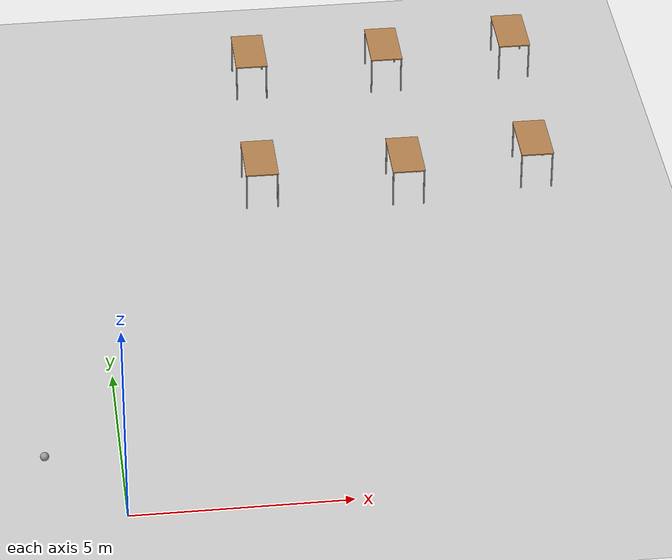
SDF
<sdf version="1.6">
 <world name="default">
  <model name="ground_plane">
   <static>1</static>
   <link name="link">
    <collision name="collision">
     <geometry><plane><normal>0 0 1</normal><size>100 100</size></plane></geometry>
     <surface>
      <contact><collide_bitmask>65535</collide_bitmask></contact>
      <friction><ode><mu>100</mu><mu2>50</mu2></ode></friction>
     </surface>
    </collision>
    <visual name="visual">
     <cast_shadows>0</cast_shadows>
     <geometry><plane><normal>0 0 1</normal><size>100 100</size></plane></geometry>
     <material>
      <script><uri>file://media/materials/scripts/gazebo.material</uri><name>Gazebo/Grey</name></script>
     </material>
    </visual>
   </link>
  </model>
  <model name="table_clone_8">
   <static>1</static>
   <link name="link">
    <collision name="surface">
     <pose>0 0 1 0 -0 0</pose>
     <geometry><box><size>1.5 0.8 0.03</size></box></geometry>
     <surface><friction><ode><mu>0.6</mu><mu2>0.6</mu2></ode></friction></surface>
    </collision>
    <visual name="visual1">
     <pose>0 0 1 0 -0 0</pose>
     <geometry><box><size>1.5 0.8 0.03</size></box></geometry>
     <material>
      <script><uri>file://media/materials/scripts/gazebo.material</uri><name>Gazebo/Wood</name></script>
     </material>
    </visual>
    <collision name="front_left_leg">
     <pose>0.68 0.38 0.5 0 -0 0</pose>
     <geometry><cylinder><radius>0.02</radius><length>1</length></cylinder></geometry>
    </collision>
    <visual name="front_left_leg">
     <pose>0.68 0.38 0.5 0 -0 0</pose>
     <geometry><cylinder><radius>0.02</radius><length>1</length></cylinder></geometry>
     <material>
      <script><uri>file://media/materials/scripts/gazebo.material</uri><name>Gazebo/Grey</name></script>
     </material>
    </visual>
    <collision name="front_right_leg">
     <pose>0.68 -0.38 0.5 0 -0 0</pose>
     <geometry><cylinder><radius>0.02</radius><length>1</length></cylinder></geometry>
    </collision>
    <visual name="front_right_leg">
     <pose>0.68 -0.38 0.5 0 -0 0</pose>
     <geometry><cylinder><radius>0.02</radius><length>1</length></cylinder></geometry>
     <material>
      <script><uri>file://media/materials/scripts/gazebo.material</uri><name>Gazebo/Grey</name></script>
     </material>
    </visual>
    <collision name="back_right_leg">
     <pose>-0.68 -0.38 0.5 0 -0 0</pose>
     <geometry><cylinder><radius>0.02</radius><length>1</length></cylinder></geometry>
    </collision>
    <visual name="back_right_leg">
     <pose>-0.68 -0.38 0.5 0 -0 0</pose>
     <geometry><cylinder><radius>0.02</radius><length>1</length></cylinder></geometry>
     <material>
      <script><uri>file://media/materials/scripts/gazebo.material</uri><name>Gazebo/Grey</name></script>
     </material>
    </visual>
    <collision name="back_left_leg">
     <pose>-0.68 0.38 0.5 0 -0 0</pose>
     <geometry><cylinder><radius>0.02</radius><length>1</length></cylinder></geometry>
    </collision>
    <visual name="back_left_leg">
     <pose>-0.68 0.38 0.5 0 -0 0</pose>
     <geometry><cylinder><radius>0.02</radius><length>1</length></cylinder></geometry>
     <material>
      <script><uri>file://media/materials/scripts/gazebo.material</uri><name>Gazebo/Grey</name></script>
     </material>
    </visual>
   </link>
   <pose>4.36338 16.9185 0 0 0 -1.57678</pose>
  </model>
  <model name="table_clone_9">
   <static>1</static>
   <link name="link">
    <collision name="surface">
     <pose>0 0 1 0 -0 0</pose>
     <geometry><box><size>1.5 0.8 0.03</size></box></geometry>
     <surface><friction><ode><mu>0.6</mu><mu2>0.6</mu2></ode></friction></surface>
    </collision>
    <visual name="visual1">
     <pose>0 0 1 0 -0 0</pose>
     <geometry><box><size>1.5 0.8 0.03</size></box></geometry>
     <material>
      <script><uri>file://media/materials/scripts/gazebo.material</uri><name>Gazebo/Wood</name></script>
     </material>
    </visual>
    <collision name="front_left_leg">
     <pose>0.68 0.38 0.5 0 -0 0</pose>
     <geometry><cylinder><radius>0.02</radius><length>1</length></cylinder></geometry>
    </collision>
    <visual name="front_left_leg">
     <pose>0.68 0.38 0.5 0 -0 0</pose>
     <geometry><cylinder><radius>0.02</radius><length>1</length></cylinder></geometry>
     <material>
      <script><uri>file://media/materials/scripts/gazebo.material</uri><name>Gazebo/Grey</name></script>
     </material>
    </visual>
    <collision name="front_right_leg">
     <pose>0.68 -0.38 0.5 0 -0 0</pose>
     <geometry><cylinder><radius>0.02</radius><length>1</length></cylinder></geometry>
    </collision>
    <visual name="front_right_leg">
     <pose>0.68 -0.38 0.5 0 -0 0</pose>
     <geometry><cylinder><radius>0.02</radius><length>1</length></cylinder></geometry>
     <material>
      <script><uri>file://media/materials/scripts/gazebo.material</uri><name>Gazebo/Grey</name></script>
     </material>
    </visual>
    <collision name="back_right_leg">
     <pose>-0.68 -0.38 0.5 0 -0 0</pose>
     <geometry><cylinder><radius>0.02</radius><length>1</length></cylinder></geometry>
    </collision>
    <visual name="back_right_leg">
     <pose>-0.68 -0.38 0.5 0 -0 0</pose>
     <geometry><cylinder><radius>0.02</radius><length>1</length></cylinder></geometry>
     <material>
      <script><uri>file://media/materials/scripts/gazebo.material</uri><name>Gazebo/Grey</name></script>
     </material>
    </visual>
    <collision name="back_left_leg">
     <pose>-0.68 0.38 0.5 0 -0 0</pose>
     <geometry><cylinder><radius>0.02</radius><length>1</length></cylinder></geometry>
    </collision>
    <visual name="back_left_leg">
     <pose>-0.68 0.38 0.5 0 -0 0</pose>
     <geometry><cylinder><radius>0.02</radius><length>1</length></cylinder></geometry>
     <material>
      <script><uri>file://media/materials/scripts/gazebo.material</uri><name>Gazebo/Grey</name></script>
     </material>
    </visual>
   </link>
   <pose>4.13155 12.0466 0 0 0 -1.57678</pose>
  </model>
  <model name="table_clone_10">
   <static>1</static>
   <link name="link">
    <collision name="surface">
     <pose>0 0 1 0 -0 0</pose>
     <geometry><box><size>1.5 0.8 0.03</size></box></geometry>
     <surface><friction><ode><mu>0.6</mu><mu2>0.6</mu2></ode></friction></surface>
    </collision>
    <visual name="visual1">
     <pose>0 0 1 0 -0 0</pose>
     <geometry><box><size>1.5 0.8 0.03</size></box></geometry>
     <material>
      <script><uri>file://media/materials/scripts/gazebo.material</uri><name>Gazebo/Wood</name></script>
     </material>
    </visual>
    <collision name="front_left_leg">
     <pose>0.68 0.38 0.5 0 -0 0</pose>
     <geometry><cylinder><radius>0.02</radius><length>1</length></cylinder></geometry>
    </collision>
    <visual name="front_left_leg">
     <pose>0.68 0.38 0.5 0 -0 0</pose>
     <geometry><cylinder><radius>0.02</radius><length>1</length></cylinder></geometry>
     <material>
      <script><uri>file://media/materials/scripts/gazebo.material</uri><name>Gazebo/Grey</name></script>
     </material>
    </visual>
    <collision name="front_right_leg">
     <pose>0.68 -0.38 0.5 0 -0 0</pose>
     <geometry><cylinder><radius>0.02</radius><length>1</length></cylinder></geometry>
    </collision>
    <visual name="front_right_leg">
     <pose>0.68 -0.38 0.5 0 -0 0</pose>
     <geometry><cylinder><radius>0.02</radius><length>1</length></cylinder></geometry>
     <material>
      <script><uri>file://media/materials/scripts/gazebo.material</uri><name>Gazebo/Grey</name></script>
     </material>
    </visual>
    <collision name="back_right_leg">
     <pose>-0.68 -0.38 0.5 0 -0 0</pose>
     <geometry><cylinder><radius>0.02</radius><length>1</length></cylinder></geometry>
    </collision>
    <visual name="back_right_leg">
     <pose>-0.68 -0.38 0.5 0 -0 0</pose>
     <geometry><cylinder><radius>0.02</radius><length>1</length></cylinder></geometry>
     <material>
      <script><uri>file://media/materials/scripts/gazebo.material</uri><name>Gazebo/Grey</name></script>
     </material>
    </visual>
    <collision name="back_left_leg">
     <pose>-0.68 0.38 0.5 0 -0 0</pose>
     <geometry><cylinder><radius>0.02</radius><length>1</length></cylinder></geometry>
    </collision>
    <visual name="back_left_leg">
     <pose>-0.68 0.38 0.5 0 -0 0</pose>
     <geometry><cylinder><radius>0.02</radius><length>1</length></cylinder></geometry>
     <material>
      <script><uri>file://media/materials/scripts/gazebo.material</uri><name>Gazebo/Grey</name></script>
     </material>
    </visual>
   </link>
   <pose>7.70477 11.789 0 0 0 -1.57678</pose>
  </model>
  <model name="table_clone_11">
   <static>1</static>
   <link name="link">
    <collision name="surface">
     <pose>0 0 1 0 -0 0</pose>
     <geometry><box><size>1.5 0.8 0.03</size></box></geometry>
     <surface><friction><ode><mu>0.6</mu><mu2>0.6</mu2></ode></friction></surface>
    </collision>
    <visual name="visual1">
     <pose>0 0 1 0 -0 0</pose>
     <geometry><box><size>1.5 0.8 0.03</size></box></geometry>
     <material>
      <script><uri>file://media/materials/scripts/gazebo.material</uri><name>Gazebo/Wood</name></script>
     </material>
    </visual>
    <collision name="front_left_leg">
     <pose>0.68 0.38 0.5 0 -0 0</pose>
     <geometry><cylinder><radius>0.02</radius><length>1</length></cylinder></geometry>
    </collision>
    <visual name="front_left_leg">
     <pose>0.68 0.38 0.5 0 -0 0</pose>
     <geometry><cylinder><radius>0.02</radius><length>1</length></cylinder></geometry>
     <material>
      <script><uri>file://media/materials/scripts/gazebo.material</uri><name>Gazebo/Grey</name></script>
     </material>
    </visual>
    <collision name="front_right_leg">
     <pose>0.68 -0.38 0.5 0 -0 0</pose>
     <geometry><cylinder><radius>0.02</radius><length>1</length></cylinder></geometry>
    </collision>
    <visual name="front_right_leg">
     <pose>0.68 -0.38 0.5 0 -0 0</pose>
     <geometry><cylinder><radius>0.02</radius><length>1</length></cylinder></geometry>
     <material>
      <script><uri>file://media/materials/scripts/gazebo.material</uri><name>Gazebo/Grey</name></script>
     </material>
    </visual>
    <collision name="back_right_leg">
     <pose>-0.68 -0.38 0.5 0 -0 0</pose>
     <geometry><cylinder><radius>0.02</radius><length>1</length></cylinder></geometry>
    </collision>
    <visual name="back_right_leg">
     <pose>-0.68 -0.38 0.5 0 -0 0</pose>
     <geometry><cylinder><radius>0.02</radius><length>1</length></cylinder></geometry>
     <material>
      <script><uri>file://media/materials/scripts/gazebo.material</uri><name>Gazebo/Grey</name></script>
     </material>
    </visual>
    <collision name="back_left_leg">
     <pose>-0.68 0.38 0.5 0 -0 0</pose>
     <geometry><cylinder><radius>0.02</radius><length>1</length></cylinder></geometry>
    </collision>
    <visual name="back_left_leg">
     <pose>-0.68 0.38 0.5 0 -0 0</pose>
     <geometry><cylinder><radius>0.02</radius><length>1</length></cylinder></geometry>
     <material>
      <script><uri>file://media/materials/scripts/gazebo.material</uri><name>Gazebo/Grey</name></script>
     </material>
    </visual>
   </link>
   <pose>7.82498 16.8752 0 0 0 -1.57678</pose>
  </model>
  <model name="table_clone_12">
   <static>1</static>
   <link name="link">
    <collision name="surface">
     <pose>0 0 1 0 -0 0</pose>
     <geometry><box><size>1.5 0.8 0.03</size></box></geometry>
     <surface><friction><ode><mu>0.6</mu><mu2>0.6</mu2></ode></friction></surface>
    </collision>
    <visual name="visual1">
     <pose>0 0 1 0 -0 0</pose>
     <geometry><box><size>1.5 0.8 0.03</size></box></geometry>
     <material>
      <script><uri>file://media/materials/scripts/gazebo.material</uri><name>Gazebo/Wood</name></script>
     </material>
    </visual>
    <collision name="front_left_leg">
     <pose>0.68 0.38 0.5 0 -0 0</pose>
     <geometry><cylinder><radius>0.02</radius><length>1</length></cylinder></geometry>
    </collision>
    <visual name="front_left_leg">
     <pose>0.68 0.38 0.5 0 -0 0</pose>
     <geometry><cylinder><radius>0.02</radius><length>1</length></cylinder></geometry>
     <material>
      <script><uri>file://media/materials/scripts/gazebo.material</uri><name>Gazebo/Grey</name></script>
     </material>
    </visual>
    <collision name="front_right_leg">
     <pose>0.68 -0.38 0.5 0 -0 0</pose>
     <geometry><cylinder><radius>0.02</radius><length>1</length></cylinder></geometry>
    </collision>
    <visual name="front_right_leg">
     <pose>0.68 -0.38 0.5 0 -0 0</pose>
     <geometry><cylinder><radius>0.02</radius><length>1</length></cylinder></geometry>
     <material>
      <script><uri>file://media/materials/scripts/gazebo.material</uri><name>Gazebo/Grey</name></script>
     </material>
    </visual>
    <collision name="back_right_leg">
     <pose>-0.68 -0.38 0.5 0 -0 0</pose>
     <geometry><cylinder><radius>0.02</radius><length>1</length></cylinder></geometry>
    </collision>
    <visual name="back_right_leg">
     <pose>-0.68 -0.38 0.5 0 -0 0</pose>
     <geometry><cylinder><radius>0.02</radius><length>1</length></cylinder></geometry>
     <material>
      <script><uri>file://media/materials/scripts/gazebo.material</uri><name>Gazebo/Grey</name></script>
     </material>
    </visual>
    <collision name="back_left_leg">
     <pose>-0.68 0.38 0.5 0 -0 0</pose>
     <geometry><cylinder><radius>0.02</radius><length>1</length></cylinder></geometry>
    </collision>
    <visual name="back_left_leg">
     <pose>-0.68 0.38 0.5 0 -0 0</pose>
     <geometry><cylinder><radius>0.02</radius><length>1</length></cylinder></geometry>
     <material>
      <script><uri>file://media/materials/scripts/gazebo.material</uri><name>Gazebo/Grey</name></script>
     </material>
    </visual>
   </link>
   <pose>11.1741 17.1512 0 0 0 -1.57678</pose>
  </model>
  <model name="table_clone_13">
   <static>1</static>
   <link name="link">
    <collision name="surface">
     <pose>0 0 1 0 -0 0</pose>
     <geometry><box><size>1.5 0.8 0.03</size></box></geometry>
     <surface><friction><ode><mu>0.6</mu><mu2>0.6</mu2></ode></friction></surface>
    </collision>
    <visual name="visual1">
     <pose>0 0 1 0 -0 0</pose>
     <geometry><box><size>1.5 0.8 0.03</size></box></geometry>
     <material>
      <script><uri>file://media/materials/scripts/gazebo.material</uri><name>Gazebo/Wood</name></script>
     </material>
    </visual>
    <collision name="front_left_leg">
     <pose>0.68 0.38 0.5 0 -0 0</pose>
     <geometry><cylinder><radius>0.02</radius><length>1</length></cylinder></geometry>
    </collision>
    <visual name="front_left_leg">
     <pose>0.68 0.38 0.5 0 -0 0</pose>
     <geometry><cylinder><radius>0.02</radius><length>1</length></cylinder></geometry>
     <material>
      <script><uri>file://media/materials/scripts/gazebo.material</uri><name>Gazebo/Grey</name></script>
     </material>
    </visual>
    <collision name="front_right_leg">
     <pose>0.68 -0.38 0.5 0 -0 0</pose>
     <geometry><cylinder><radius>0.02</radius><length>1</length></cylinder></geometry>
    </collision>
    <visual name="front_right_leg">
     <pose>0.68 -0.38 0.5 0 -0 0</pose>
     <geometry><cylinder><radius>0.02</radius><length>1</length></cylinder></geometry>
     <material>
      <script><uri>file://media/materials/scripts/gazebo.material</uri><name>Gazebo/Grey</name></script>
     </material>
    </visual>
    <collision name="back_right_leg">
     <pose>-0.68 -0.38 0.5 0 -0 0</pose>
     <geometry><cylinder><radius>0.02</radius><length>1</length></cylinder></geometry>
    </collision>
    <visual name="back_right_leg">
     <pose>-0.68 -0.38 0.5 0 -0 0</pose>
     <geometry><cylinder><radius>0.02</radius><length>1</length></cylinder></geometry>
     <material>
      <script><uri>file://media/materials/scripts/gazebo.material</uri><name>Gazebo/Grey</name></script>
     </material>
    </visual>
    <collision name="back_left_leg">
     <pose>-0.68 0.38 0.5 0 -0 0</pose>
     <geometry><cylinder><radius>0.02</radius><length>1</length></cylinder></geometry>
    </collision>
    <visual name="back_left_leg">
     <pose>-0.68 0.38 0.5 0 -0 0</pose>
     <geometry><cylinder><radius>0.02</radius><length>1</length></cylinder></geometry>
     <material>
      <script><uri>file://media/materials/scripts/gazebo.material</uri><name>Gazebo/Grey</name></script>
     </material>
    </visual>
   </link>
   <pose>10.9423 12.1721 0 0 0 -1.57678</pose>
  </model>
  <model name="my_ball2">
   <link name="link_0">
    <inertial>
     <mass>1</mass>
     <inertia><ixx>0.1</ixx><ixy>0</ixy><ixz>0</ixz><iyy>0.1</iyy><iyz>0</iyz><izz>0.1</izz></inertia>
    </inertial>
    <visual name="visual">
     <geometry><sphere><radius>0.1</radius></sphere></geometry>
     <material>
      <lighting>1</lighting>
      <script><uri>file://media/materials/scripts/gazebo.material</uri><name>Gazebo/Grey</name></script>
      <shader type="pixel"><normal_map>__default__</normal_map></shader>
      <ambient>1 1 1 1</ambient>
      <diffuse>1 1 1 1</diffuse>
      <specular>1 1 1 1</specular>
      <emissive>1 1 1 1</emissive>
     </material>
    </visual>
    <collision name="collision">
     <geometry><sphere><radius>0.1</radius></sphere></geometry>
     <surface>
      <friction>
       <ode><mu>1</mu><mu2>1</mu2><fdir1>0 0 0</fdir1><slip1>0</slip1><slip2>0</slip2></ode>
       <torsional>
        <coefficient>1</coefficient>
        <patch_radius>0</patch_radius>
        <surface_radius>0</surface_radius>
        <use_patch_radius>1</use_patch_radius>
        <ode><slip>0</slip></ode>
       </torsional>
      </friction>
      <bounce><restitution_coefficient>0</restitution_coefficient><threshold>1e+06</threshold></bounce>
      <contact>
       <collide_without_contact>0</collide_without_contact>
       <collide_without_contact_bitmask>1</collide_without_contact_bitmask>
       <collide_bitmask>1</collide_bitmask>
       <ode>
        <soft_cfm>0</soft_cfm>
        <soft_erp>0.2</soft_erp>
        <kp>1e+13</kp>
        <kd>1</kd>
        <max_vel>0.01</max_vel>
        <min_depth>0</min_depth>
       </ode>
       <bullet>
        <split_impulse>1</split_impulse>
        <split_impulse_penetration_threshold>-0.01</split_impulse_penetration_threshold>
        <soft_cfm>0</soft_cfm>
        <soft_erp>0.2</soft_erp>
        <kp>1e+13</kp>
        <kd>1</kd>
       </bullet>
      </contact>
     </surface>
    </collision>
   </link>
   <static>0</static>
   <pose>-1.7042 2.1387 0.1 0 -0 0</pose>
  </model>
 </world>
</sdf>
